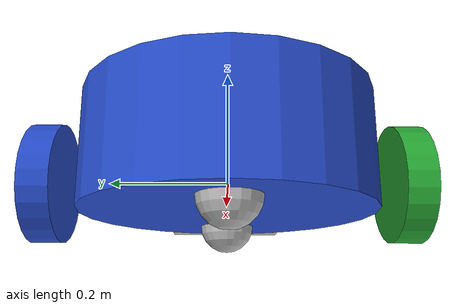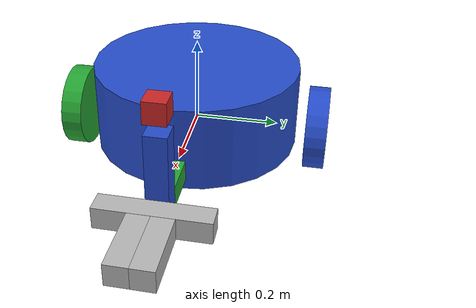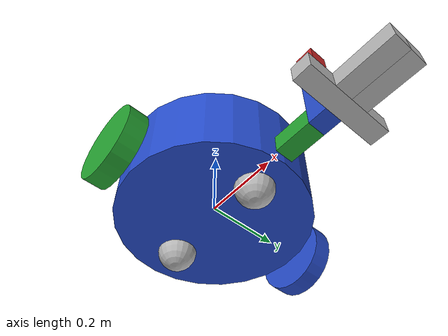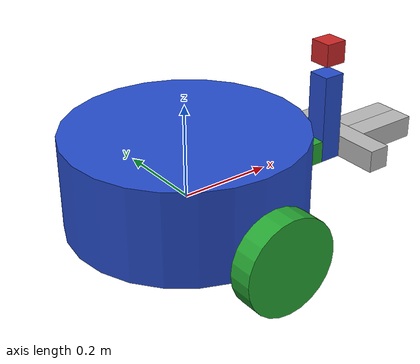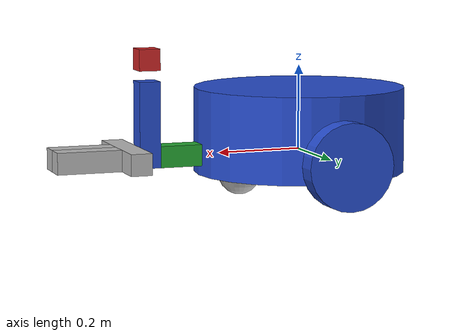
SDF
<sdf version='1.7'>
  <model name='queenie_sdf'>
    <link name='robot_footprint'>
      <inertial>
        <pose>0.016841 0 0.049004 0 -0 0</pose>
        <mass>15.81</mass>
        <inertia>
          <ixx>2.85823</ixx>
          <ixy>0</ixy>
          <ixz>0.00376601</ixz>
          <iyy>2.94546</iyy>
          <iyz>0</iyz>
          <izz>4.77811</izz>
        </inertia>
      </inertial>
      <collision name='robot_footprint_fixed_joint_lump__collision_collision'>
        <pose>0 0 0.05 0 -0 0</pose>
        <geometry>
          <cylinder>
            <length>0.2</length>
            <radius>0.25</radius>
          </cylinder>
        </geometry>
      </collision>
      <collision name='robot_footprint_fixed_joint_lump__back_caster_collision_collision_1'>
        <pose>-0.15 0 -0.05 0 -0 0</pose>
        <geometry>
          <sphere>
            <radius>0.0499</radius>
          </sphere>
        </geometry>
      </collision>
      <collision name='robot_footprint_fixed_joint_lump__front_caster_collision_collision_2'>
        <pose>0.15 0 -0.05 0 -0 0</pose>
        <geometry>
          <sphere>
            <radius>0.0499</radius>
          </sphere>
        </geometry>
      </collision>
      <collision name='robot_footprint_fixed_joint_lump__gripper_pole_collision_3'>
        <pose>0.3 0 0 0 -0 0</pose>
        <geometry>
          <box>
            <size>0.1 0.05 0.05</size>
          </box>
        </geometry>
        <surface>
          <contact>
            <ode/>
          </contact>
          <friction>
            <ode/>
          </friction>
        </surface>
      </collision>
      <collision name='robot_footprint_fixed_joint_lump__gripper_pole_vertical_collision_4'>
        <pose>0.375 0 0.075 0 -0 0</pose>
        <geometry>
          <box>
            <size>0.05 0.05 0.2</size>
          </box>
        </geometry>
        <surface>
          <contact>
            <ode/>
          </contact>
          <friction>
            <ode/>
          </friction>
        </surface>
      </collision>
      <collision name='robot_footprint_fixed_joint_lump__camera_collision_5'>
        <pose>0.375 0 0.225 0 -0 0</pose>
        <geometry>
          <box>
            <size>0.05 0.05 0.05</size>
          </box>
        </geometry>
        <surface>
          <contact>
            <ode/>
          </contact>
          <friction>
            <ode/>
          </friction>
        </surface>
      </collision>
      <visual name='robot_footprint_fixed_joint_lump__chassis_visual_visual'>
        <pose>0 0 0.05 0 -0 0</pose>
        <geometry>
          <cylinder>
            <length>0.2</length>
            <radius>0.25</radius>
          </cylinder>
        </geometry>
        <material>
          <script>
            <name>Gazebo/Blue</name>
            <uri>file://media/materials/scripts/gazebo.material</uri>
          </script>
        </material>
      </visual>
      <visual name='robot_footprint_fixed_joint_lump__back_caster_visual_visual_1'>
        <pose>-0.15 0 -0.05 0 -0 0</pose>
        <geometry>
          <sphere>
            <radius>0.05</radius>
          </sphere>
        </geometry>
      </visual>
      <visual name='robot_footprint_fixed_joint_lump__front_caster_visual_visual_2'>
        <pose>0.15 0 -0.05 0 -0 0</pose>
        <geometry>
          <sphere>
            <radius>0.05</radius>
          </sphere>
        </geometry>
      </visual>
      <visual name='robot_footprint_fixed_joint_lump__gripper_pole_visual_3'>
        <pose>0.3 0 0 0 -0 0</pose>
        <geometry>
          <box>
            <size>0.1 0.05 0.05</size>
          </box>
        </geometry>
        <material>
          <script>
            <name>Gazebo/Green</name>
            <uri>file://media/materials/scripts/gazebo.material</uri>
          </script>
        </material>
      </visual>
      <visual name='robot_footprint_fixed_joint_lump__gripper_pole_vertical_visual_4'>
        <pose>0.375 0 0.075 0 -0 0</pose>
        <geometry>
          <box>
            <size>0.05 0.05 0.2</size>
          </box>
        </geometry>
        <material>
          <script>
            <name>Gazebo/Blue</name>
            <uri>file://media/materials/scripts/gazebo.material</uri>
          </script>
        </material>
      </visual>
      <visual name='robot_footprint_fixed_joint_lump__camera_visual_5'>
        <pose>0.375 0 0.225 0 -0 0</pose>
        <geometry>
          <box>
            <size>0.05 0.05 0.05</size>
          </box>
        </geometry>
        <material>
          <script>
            <name>Gazebo/Red</name>
            <uri>file://media/materials/scripts/gazebo.material</uri>
          </script>
        </material>
      </visual>
      <self_collide>0</self_collide>

    </link>
    <joint name='palm_riser' type='prismatic'>
      <pose relative_to='robot_footprint'>0.4 0 0 0 -0 0</pose>
      <parent>robot_footprint</parent>
      <child>palm</child>
      <axis>
        <xyz>0 0 1</xyz>
        <limit>
          <lower>0</lower>
          <upper>0.17</upper>
          <effort>1000</effort>
          <velocity>0.05</velocity>
        </limit>
        <dynamics>
          <damping>10</damping>
          <friction>1</friction>
          <spring_reference>0</spring_reference>
          <spring_stiffness>0</spring_stiffness>
        </dynamics>
      </axis>
      <physics>
        <provide_feedback>1</provide_feedback>
        <ode>
          <limit>
            <cfm>0</cfm>
            <erp>0.2</erp>
          </limit>
          <provide_feedback>1</provide_feedback>
        </ode>
      </physics>
    </joint>
    <link name='palm'>
      <pose relative_to='palm_riser'>0 0 0 0 -0 0</pose>
      <inertial>
        <pose>0.025 0 0 0 -0 0</pose>
        <mass>0.8</mass>
        <inertia>
          <ixx>0.0433333</ixx>
          <ixy>0</ixy>
          <ixz>0</ixz>
          <iyy>0.00333333</iyy>
          <iyz>0</iyz>
          <izz>0.0433333</izz>
        </inertia>
      </inertial>
      <collision name='palm_fixed_joint_lump__collision_collision'>
        <pose>0.025 0 0 0 -0 0</pose>
        <geometry>
          <box>
            <size>0.05 0.25 0.05</size>
          </box>
        </geometry>
      </collision>
      <visual name='palm_fixed_joint_lump__visual_visual'>
        <pose>0.025 0 0 0 -0 0</pose>
        <geometry>
          <box>
            <size>0.05 0.25 0.05</size>
          </box>
        </geometry>
      </visual>
      <self_collide>0</self_collide>
    </link>
    <joint name='palm_left_finger' type='prismatic'>
      <pose relative_to='palm'>0.125 0.025 0 0 -0 0</pose>
      <parent>palm</parent>
      <child>left_finger</child>
      <axis>
        <xyz>0 1 0</xyz>
        <limit>
          <lower>0</lower>
          <upper>0.1</upper>
          <effort>1000</effort>
          <velocity>0.5</velocity>
        </limit>
        <dynamics>
          <damping>0.1</damping>
          <friction>1</friction>
          <spring_reference>0</spring_reference>
          <spring_stiffness>0</spring_stiffness>
        </dynamics>
      </axis>
    </joint>
    <link name='left_finger'>
      <pose relative_to='palm_left_finger'>0 0 0 0 -0 0</pose>
      <inertial>
        <pose>0 0 0 0 -0 0</pose>
        <mass>0.3</mass>
        <inertia>
          <ixx>0.00125</ixx>
          <ixy>0</ixy>
          <ixz>0</ixz>
          <iyy>0.00625</iyy>
          <iyz>0</iyz>
          <izz>0.00625</izz>
        </inertia>
      </inertial>
      <collision name='left_finger_fixed_joint_lump__collision_collision'>
        <pose>0 0 0 0 -0 0</pose>
        <geometry>
          <box>
            <size>0.15 0.05 0.05</size>
          </box>
        </geometry>
      </collision>
      <visual name='left_finger_fixed_joint_lump__visual_visual'>
        <pose>0 0 0 0 -0 0</pose>
        <geometry>
          <box>
            <size>0.15 0.05 0.05</size>
          </box>
        </geometry>
      </visual>
      <self_collide>0</self_collide>
    </link>
    <joint name='palm_right_finger' type='prismatic'>
      <pose relative_to='palm'>0.125 -0.025 0 0 -0 0</pose>
      <parent>palm</parent>
      <child>right_finger</child>
      <axis>
        <xyz>0 -1 0</xyz>
        <limit>
          <lower>0</lower>
          <upper>0.1</upper>
          <effort>1000</effort>
          <velocity>0.5</velocity>
        </limit>
        <dynamics>
          <damping>0.1</damping>
          <friction>1</friction>
          <spring_reference>0</spring_reference>
          <spring_stiffness>0</spring_stiffness>
        </dynamics>
      </axis>
    </joint>
    <link name='right_finger'>
      <pose relative_to='palm_right_finger'>0 0 0 0 -0 0</pose>
      <inertial>
        <pose>0 0 0 0 -0 0</pose>
        <mass>0.3</mass>
        <inertia>
          <ixx>0.00125</ixx>
          <ixy>0</ixy>
          <ixz>0</ixz>
          <iyy>0.00625</iyy>
          <iyz>0</iyz>
          <izz>0.00625</izz>
        </inertia>
      </inertial>
      <collision name='right_finger_fixed_joint_lump__collision_collision'>
        <pose>0 0 0 0 -0 0</pose>
        <geometry>
          <box>
            <size>0.15 0.05 0.05</size>
          </box>
        </geometry>
      </collision>
      <visual name='right_finger_fixed_joint_lump__visual_visual'>
        <pose>0 0 0 0 -0 0</pose>
        <geometry>
          <box>
            <size>0.15 0.05 0.05</size>
          </box>
        </geometry>
      </visual>
      <self_collide>0</self_collide>
      <maxDepth>0</maxDepth>
    </link>
    <joint name='left_wheel_hinge' type='revolute'>
      <pose relative_to='robot_footprint'>0 0.3 0 0 -0 0</pose>
      <parent>robot_footprint</parent>
      <child>left_wheel</child>
      <axis>
        <xyz>0 1 0</xyz>
        <limit>
          <effort>1e+06</effort>
          <velocity>1000</velocity>
          <lower>-1e+16</lower>
          <upper>1e+16</upper>
        </limit>
        <dynamics>
          <damping>1</damping>
          <friction>1</friction>
          <spring_reference>0</spring_reference>
          <spring_stiffness>0</spring_stiffness>
        </dynamics>
      </axis>
    </joint>
    <link name='left_wheel'>
      <pose relative_to='left_wheel_hinge'>0 0 0 0 -0 0</pose>
      <inertial>
        <pose>0 0 0 -1.5708 1.5708 0</pose>
        <mass>2</mass>
        <inertia>
          <ixx>0.0541667</ixx>
          <ixy>0</ixy>
          <ixz>0</ixz>
          <iyy>0.0541667</iyy>
          <iyz>0</iyz>
          <izz>0.1</izz>
        </inertia>
      </inertial>
      <collision name='left_wheel_collision'>
        <pose>0 0 0 -1.5707 1.5708 0</pose>
        <geometry>
          <cylinder>
            <length>0.05</length>
            <radius>0.1</radius>
          </cylinder>
        </geometry>
        <surface>
          <contact>
            <ode>
              <kp>1e+06</kp>
              <kd>100</kd>
            </ode>
          </contact>
          <friction>
            <ode>
              <mu>1500</mu>
              <mu2>100</mu2>
            </ode>
          </friction>
        </surface>
      </collision>
      <visual name='left_wheel_visual'>
        <pose>0 0 0 -1.5707 1.5708 0</pose>
        <geometry>
          <cylinder>
            <length>0.05</length>
            <radius>0.1</radius>
          </cylinder>
        </geometry>
        <material>
          <script>
            <name>Gazebo/Blue</name>
            <uri>file://media/materials/scripts/gazebo.material</uri>
          </script>
        </material>
      </visual>
    </link>
    <joint name='right_wheel_hinge' type='revolute'>
      <pose relative_to='robot_footprint'>0 -0.3 0 0 -0 0</pose>
      <parent>robot_footprint</parent>
      <child>right_wheel</child>
      <axis>
        <xyz>0 1 0</xyz>
        <limit>
          <effort>1e+06</effort>
          <velocity>1000</velocity>
          <lower>-1e+16</lower>
          <upper>1e+16</upper>
        </limit>
        <dynamics>
          <damping>1</damping>
          <friction>1</friction>
          <spring_reference>0</spring_reference>
          <spring_stiffness>0</spring_stiffness>
        </dynamics>
      </axis>
    </joint>
    <link name='right_wheel'>
      <pose relative_to='right_wheel_hinge'>0 0 0 0 -0 0</pose>
      <inertial>
        <pose>0 0 0 -1.5708 1.5708 0</pose>
        <mass>2</mass>
        <inertia>
          <ixx>0.0541667</ixx>
          <ixy>0</ixy>
          <ixz>0</ixz>
          <iyy>0.0541667</iyy>
          <iyz>0</iyz>
          <izz>0.1</izz>
        </inertia>
      </inertial>
      <collision name='right_wheel_collision'>
        <pose>0 0 0 -1.5707 1.5708 0</pose>
        <geometry>
          <cylinder>
            <length>0.05</length>
            <radius>0.1</radius>
          </cylinder>
        </geometry>
        <surface>
          <contact>
            <ode>
              <kp>1e+06</kp>
              <kd>100</kd>
            </ode>
          </contact>
          <friction>
            <ode>
              <mu>1500</mu>
              <mu2>100</mu2>
            </ode>
          </friction>
        </surface>
      </collision>
      <visual name='right_wheel_visual'>
        <pose>0 0 0 -1.5707 1.5708 0</pose>
        <geometry>
          <cylinder>
            <length>0.05</length>
            <radius>0.1</radius>
          </cylinder>
        </geometry>
        <material>
          <script>
            <name>Gazebo/Green</name>
            <uri>file://media/materials/scripts/gazebo.material</uri>
          </script>
        </material>
      </visual>
    </link>
    <plugin name='ft_sensor' filename='libgazebo_ros_ft_sensor.so'>
      <updateRate>100</updateRate>
      <topicName>ft_sensor_topic</topicName>
      <jointName>palm_riser</jointName>
    </plugin>
    <static>0</static>
    <plugin name='differential_drive_controller' filename='libgazebo_ros_diff_drive.so'>
      <legacyMode>0</legacyMode>
      <alwaysOn>1</alwaysOn>
      <updateRate>100</updateRate>
      <leftJoint>left_wheel_hinge</leftJoint>
      <rightJoint>right_wheel_hinge</rightJoint>
      <wheelSeparation>0.4</wheelSeparation>
      <wheelDiameter>0.2</wheelDiameter>
      <torque>100</torque>
      <commandTopic>cmd_vel</commandTopic>
      <odometryTopic>odom</odometryTopic>
      <odometryFrame>odom</odometryFrame>
      <robotBaseFrame>robot_footprint</robotBaseFrame>
      <publishWheelTF>0</publishWheelTF>
      <publishWheelJointState>0</publishWheelJointState>
      <rosDebugLevel>na</rosDebugLevel>
      <wheelAcceleration>0</wheelAcceleration>
      <wheelTorque>50</wheelTorque>
      <odometrySource>world</odometrySource>
      <publishTf>1</publishTf>
      <publishOdomTF>1</publishOdomTF>
    </plugin>
  </model>
</sdf>
